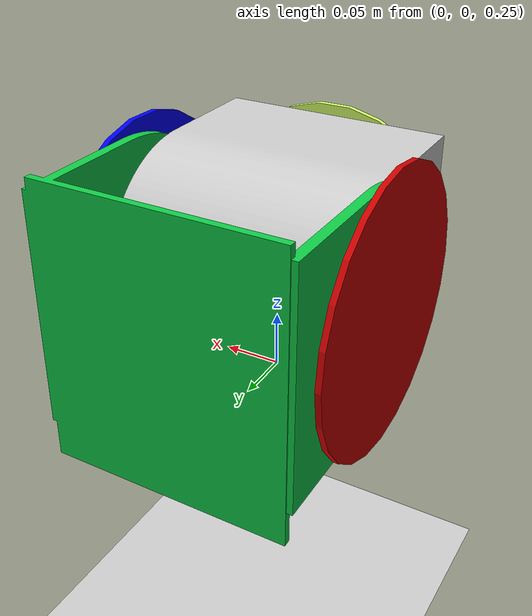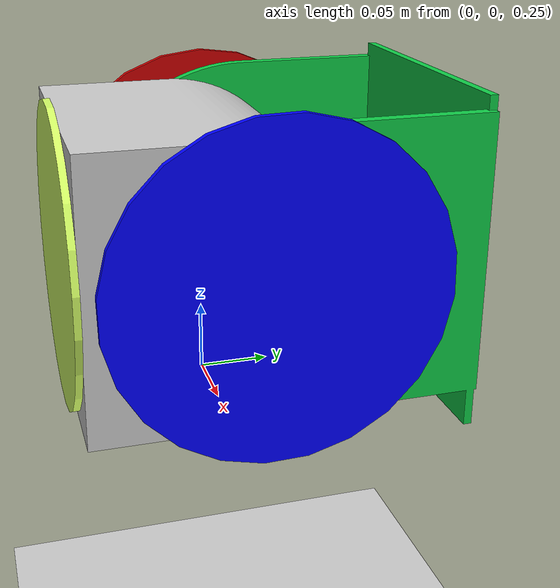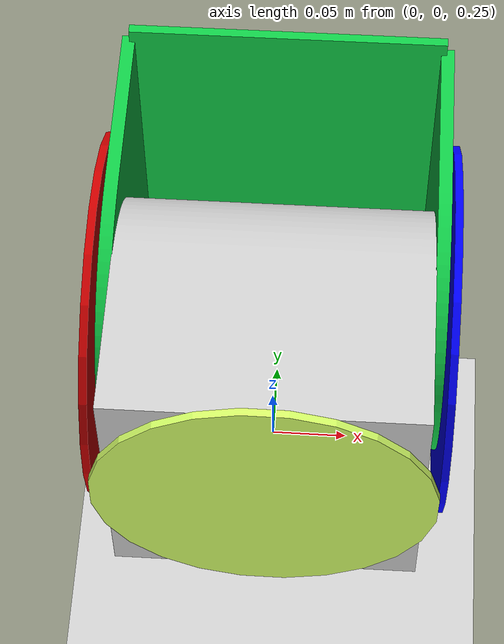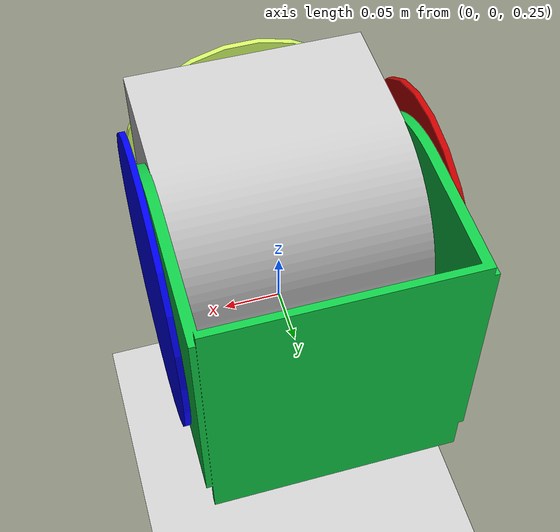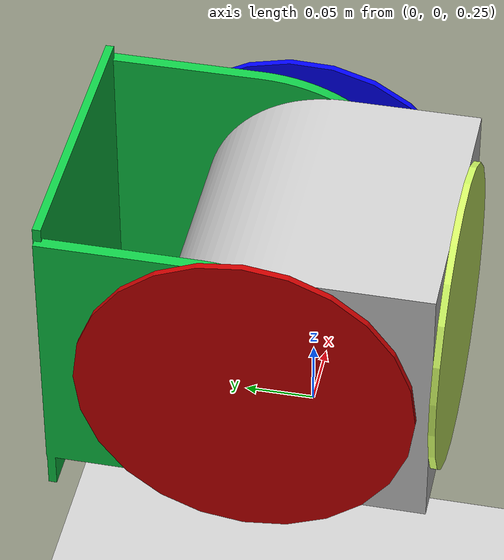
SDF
<?xml version="1.0" ?>
<sdf version="1.8">
    <world name="smore_world_empty">
        <physics name="1ms" type="ignored">
            <max_step_size>0.001</max_step_size>
            <real_time_factor>1.0</real_time_factor>
        </physics>
        <plugin
            filename="ignition-gazebo-physics-system"
            name="ignition::gazebo::systems::Physics">
        </plugin>
        <plugin
            filename="ignition-gazebo-sensors-system"
            name="ignition::gazebo::systems::Sensors">
            <render_engine>ogre2</render_engine>
        </plugin>
        <plugin
            filename="ignition-gazebo-scene-broadcaster-system"
            name="ignition::gazebo::systems::SceneBroadcaster">
        </plugin>
        <plugin
            filename="ignition-gazebo-user-commands-system"
            name="ignition::gazebo::systems::UserCommands">
        </plugin>

        <light type="directional" name="sun">
            <cast_shadows>true</cast_shadows>
            <pose>0 0 10 0 0 0</pose>
            <diffuse>0.8 0.8 0.8 1</diffuse>
            <specular>0.2 0.2 0.2 1</specular>
            <attenuation>
                <range>1000</range>
                <constant>0.9</constant>
                <linear>0.01</linear>
                <quadratic>0.001</quadratic>
            </attenuation>
            <direction>-0.5 0.1 -0.9</direction>
        </light>
        <!-- Physics and lights-->

        <!-- Ground Model-->
        <model name="ground_plane">
            <static>true</static>
            <link name="link">
                <collision name="collision">
                <geometry>
                    <plane>
                    <normal>0 0 1</normal>
                    </plane>
                </geometry>
                </collision>
                <visual name="visual">
                <geometry>
                    <plane>
                    <normal>0 0 1</normal>
                    <size>100 100</size>
                    </plane>
                </geometry>
                <material>
                    <ambient>0.8 0.8 0.8 1</ambient>
                    <diffuse>0.8 0.8 0.8 1</diffuse>
                    <specular>0.8 0.8 0.8 1</specular>
                </material>
                </visual>
            </link>
        </model>
        <!-- Ground Model-->

        <model name="smore">
            <self_collide>true</self_collide>
            <pose>0 0 0.35 0 0 0</pose>
            <include merge="true">
              <uri>package://ros_gz_example_description/models/smore</uri>
            </include>

            <plugin
              filename="ignition-gazebo-joint-state-publisher-system"
              name="ignition::gazebo::systems::JointStatePublisher">
            </plugin>

            <plugin
              filename="ignition-gazebo-pose-publisher-system"
              name="ignition::gazebo::systems::PosePublisher">
              <publish_link_pose>true</publish_link_pose>
              <use_pose_vector_msg>true</use_pose_vector_msg>
              <static_publisher>true</static_publisher>
              <static_update_frequency>1</static_update_frequency>
            </plugin>

            <plugin
              filename="ignition-gazebo-odometry-publisher-system"
              name="ignition::gazebo::systems::OdometryPublisher">
              <odom_frame>smore/odom</odom_frame>
              <robot_base_frame>smore</robot_base_frame>
            </plugin>
        </model>

    </world>
</sdf>

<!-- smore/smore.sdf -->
<sdf version="1.8">
<model name="smore" canonical_link="chasis_link">

  <!-- Back joint-->
  <joint name="back_wheel_link_joint" type="revolute">
    <pose relative_to="chasis_link">0.10390 0.05900 0.01019 0.00000 0.00000 0.00000</pose>
    <parent>chasis_link</parent>
    <child>back_link</child>
    <axis>
      <limit>
        <!-- Check actual ranges for back link-->
        <lower>-1.79769e+308</lower>
        <upper>1.79769e+308</upper>
      </limit>
      <xyz>1 0 0</xyz>
    </axis>
  </joint>
  <!-- Back joint-->

  <!-- Front wheel joint-->
  <joint name="front_wheel_link_joint" type="revolute">
    <pose relative_to="chasis_link">0.00000 -0.10251 -0.00000 1.57080 0.00000 0.00000</pose>
    <parent>chasis_link</parent>
    <child>front_wheel_link</child>
    <axis>
      <limit>
        <lower>-1.79769e+308</lower>
        <upper>1.79769e+308</upper>
      </limit>
      <xyz>0 0 1</xyz>
    </axis>
  </joint>
  <!-- Front wheel joint-->

  <!-- Left wheel joint-->
  <joint name="left_wheel_link_joint" type="revolute">
    <pose relative_to="chasis_link">0.11200 0.02822 0.00000 1.57080 1.41363 1.57080</pose>
    <parent>chasis_link</parent>
    <child>left_wheel_link</child>
    <axis>
      <limit>
        <lower>-1.79769e+308</lower>
        <upper>1.79769e+308</upper>
      </limit>
      <xyz>0 0 1</xyz>
    </axis>
  </joint>
  <!-- Left wheel joint-->

  <!-- Right wheel joint-->
  <joint name="right_wheel_link_joint" type="revolute">
    <pose relative_to="chasis_link">-0.11200 0.02822 0.00000 0.00000 1.57080 0.00000</pose>
    <parent>chasis_link</parent>
    <child>right_wheel_link</child>
    <axis>
      <limit>
        <lower>-1.79769e+308</lower>
        <upper>1.79769e+308</upper>
      </limit>
      <xyz>0 0 1</xyz>
    </axis>
  </joint>
  <!-- Right wheel joint-->

  <!-- Chasis link -->
  <link name="chasis_link">
    <pose>0.00000 0.00000 0.00000 0.00000 0.00000 0.00000</pose>
    <collision name="chasis_collision">
      <geometry>
        <mesh>
          <uri>/home/carlos/smore_ws/src/smore_project/ros_gz_example_description/models/smore/meshes/dae/Cube.dae</uri>
          <scale>0.10000 0.10000 0.10000</scale>
        </mesh>
      </geometry>
    </collision>
    <inertial>
      <inertia>
        <ixx>0.00100</ixx>
        <ixy>0.00000</ixy>
        <ixz>0.00000</ixz>
        <iyy>0.00100</iyy>
        <iyz>0.00000</iyz>
        <izz>0.00100</izz>
      </inertia>
      <mass>0.01000</mass>
    </inertial>
    <visual name="chasis">
      <material>
        <diffuse>0.80000 0.80000 0.80000 1.00000</diffuse>
        <specular>0.40000 0.40000 0.40000 0.49804</specular>
        <emissive>0.00000 0.00000 0.00000 1.00000</emissive>
      </material>
      <pose relative_to="chasis_link">0.00000 0.00000 0.00000 0.00000 0.00000 0.00000</pose>
      <geometry>
        <mesh>
          <uri>/home/carlos/smore_ws/src/smore_project/ros_gz_example_description/models/smore/meshes/dae/Cube.dae</uri>
          <scale>0.10000 0.10000 0.10000</scale>
        </mesh>
      </geometry>
    </visual>
  </link>
  <!-- Chasis link -->

  <!-- Back link -->
  <link name="back_link">
    <pose relative_to="chasis_link">0.10390 0.05900 0.01019 0.00000 0.00000 0.00000</pose>
    <collision name="back_collision">
      <geometry>
        <mesh>
          <uri>/home/carlos/smore_ws/src/smore_project/ros_gz_example_description/models/smore/meshes/dae/Cube.004.dae</uri>
          <scale>0.00300 0.08000 0.07000</scale>
        </mesh>
      </geometry>
    </collision>
    <visual name="back">
      <material>
        <diffuse>0.05882 0.80000 0.27843 1.00000</diffuse>
        <specular>0.02745 0.40000 0.13725 0.49804</specular>
        <emissive>0.00000 0.00000 0.00000 1.00000</emissive>
      </material>
      <pose relative_to="back_link">0.00000 0.00000 0.00000 0.00000 0.00000 0.00000</pose>
      <geometry>
        <mesh>
          <uri>/home/carlos/smore_ws/src/smore_project/ros_gz_example_description/models/smore/meshes/dae/Cube.004.dae</uri>
          <scale>0.00300 0.08000 0.07000</scale>
        </mesh>
      </geometry>
    </visual>
  </link>
  <!-- Back link -->

  <!-- Front wheel link-->
  <link name="front_wheel_link">
    <pose relative_to="chasis_link">0.00000 -0.10251 0.00000 1.57080 0.00000 0.00000</pose>
    <collision name="front_wheel_collision">
      <geometry>
        <cylinder>
          <radius>0.11000</radius>
          <length>0.00500</length>
        </cylinder>
      </geometry>
    </collision>
    <inertial>
      <inertia>
        <ixx>0.00003</ixx>
        <ixy>0.00000</ixy>
        <ixz>0.00000</ixz>
        <iyy>0.00006</iyy>
        <iyz>0.00000</iyz>
        <izz>0.00003</izz>
      </inertia>
      <mass>0.01000</mass>
    </inertial>
    <visual name="front_wheel">
      <material>
        <diffuse>0.83137 1.00000 0.40000 1.00000</diffuse>
        <specular>0.41569 0.49804 0.20000 0.49804</specular>
        <emissive>0.00000 0.00000 0.00000 1.00000</emissive>
      </material>
      <pose relative_to="front_wheel_link">-0.00000 -0.00000 -0.00000 0.00000 -0.00000 -0.14096</pose>
      <geometry>
        <cylinder>
          <radius>0.11000</radius>
          <length>0.00500</length>
        </cylinder>
      </geometry>
    </visual>
  </link>
  <!-- Front wheel link-->

  <!-- Left wheek link-->
  <link name="left_wheel_link">
    <pose relative_to="chasis_link">0.11200 0.02822 -0.00000 1.57080 1.41363 1.57080</pose>
    <collision name="left_wheel_collision">
      <geometry>
        <cylinder>
          <radius>0.12000</radius>
          <length>0.00500</length>
        </cylinder>
      </geometry>
    </collision>
    <inertial>
      <inertia>
        <ixx>0.00007</ixx>
        <ixy>0.00000</ixy>
        <ixz>0.00000</ixz>
        <iyy>0.00004</iyy>
        <iyz>0.00000</iyz>
        <izz>0.00004</izz>
      </inertia>
      <mass>0.01000</mass>
    </inertial>
    <visual name="left_wheel">
      <material>
        <diffuse>0.00000 0.00000 1.00000 1.00000</diffuse>
        <specular>0.00000 0.00000 0.49804 0.49804</specular>
        <emissive>0.00000 0.00000 0.00000 1.00000</emissive>
      </material>
      <pose relative_to="left_wheel_link">0.00000 0.00000 0.00000 0.00000 0.00000 0.00000</pose>
      <geometry>
        <cylinder>
          <radius>0.12000</radius>
          <length>0.00500</length>
        </cylinder>
      </geometry>
    </visual>
  </link>
  <!-- Left wheek link-->

  <!-- Right wheek link-->
  <link name="right_wheel_link">
    <pose relative_to="chasis_link">-0.11200 0.02822 0.00000 0.00000 1.57080 0.00000</pose>
    <collision name="right_wheel_collision">
      <geometry>
        <cylinder>
          <radius>0.12000</radius>
          <length>0.00500</length>
        </cylinder>
      </geometry>
    </collision>
    <inertial>
      <inertia>
        <ixx>0.00007</ixx>
        <ixy>0.00000</ixy>
        <ixz>0.00000</ixz>
        <iyy>0.00004</iyy>
        <iyz>0.00000</iyz>
        <izz>0.00004</izz>
      </inertia>
      <mass>0.01000</mass>
    </inertial>
    <visual name="right_wheel">
      <material>
        <diffuse>0.80000 0.00000 0.00000 1.00000</diffuse>
        <specular>0.40000 0.00000 0.00000 0.49804</specular>
        <emissive>0.00000 0.00000 0.00000 1.00000</emissive>
      </material>
      <pose relative_to="right_wheel_link">0.00000 0.00000 0.00000 0.00000 0.00000 0.00000</pose>
      <geometry>
        <cylinder>
          <radius>0.12000</radius>
          <length>0.00500</length>
        </cylinder>
      </geometry>
    </visual>
  </link>
  <!-- Right wheek link-->

  <plugin filename="ignition-gazebo-joint-position-controller-system"
    name="ignition::gazebo::systems::JointPositionController">
    <joint_name>back_wheel_link_joint</joint_name>
    <p_gain>20.00000</p_gain>
    <i_gain>0.00000</i_gain>
    <d_gain>0.00000</d_gain>
  </plugin>

  <plugin filename="ignition-gazebo-joint-position-controller-system"
    name="ignition::gazebo::systems::JointPositionController">
    <joint_name>front_wheel_link_joint</joint_name>
    <p_gain>20.00000</p_gain>
    <i_gain>0.00000</i_gain>
    <d_gain>0.00000</d_gain>
  </plugin>

  <plugin
    filename="libignition-gazebo-diff-drive-system.so"
    name="ignition::gazebo::systems::DiffDrive">
    <left_joint>left_wheel_link_joint</left_joint>
    <right_joint>right_wheel_link_joint</right_joint>
    <wheel_separation>0.2240</wheel_separation>
    <wheel_radius>0.12000</wheel_radius>
    <odom_publish_frequency>1</odom_publish_frequency>
    <topic>/smore/cmd_vel</topic>
  </plugin>

</model>
</sdf>
